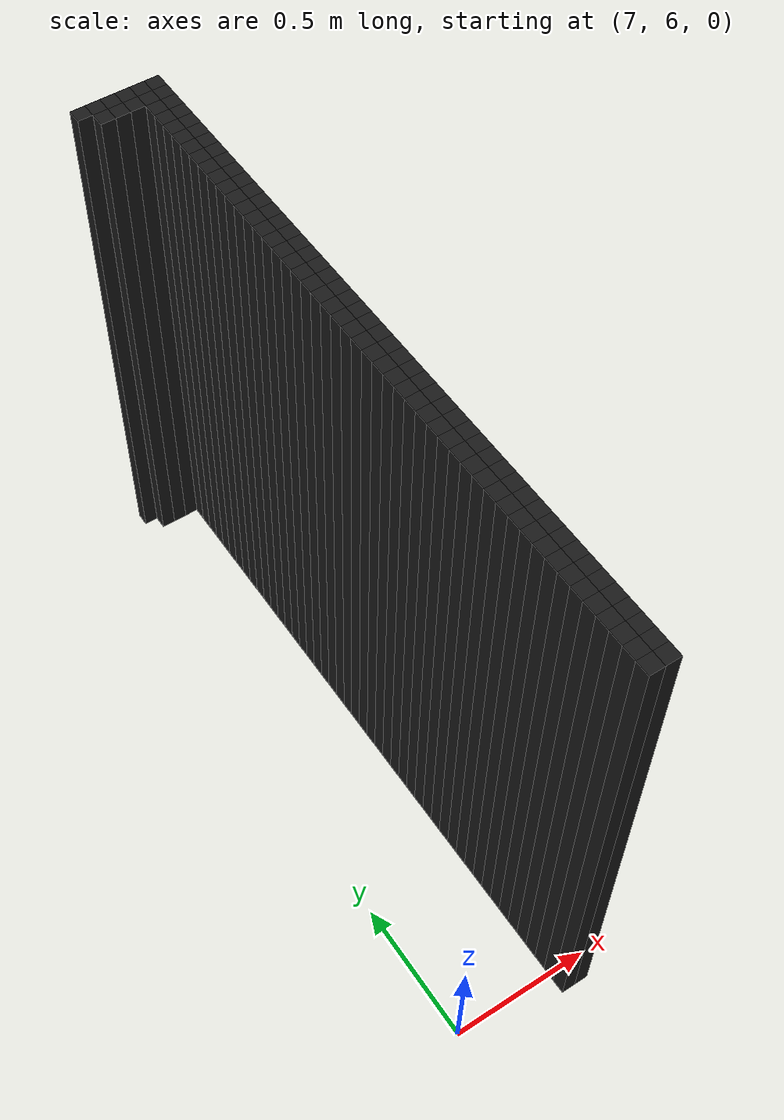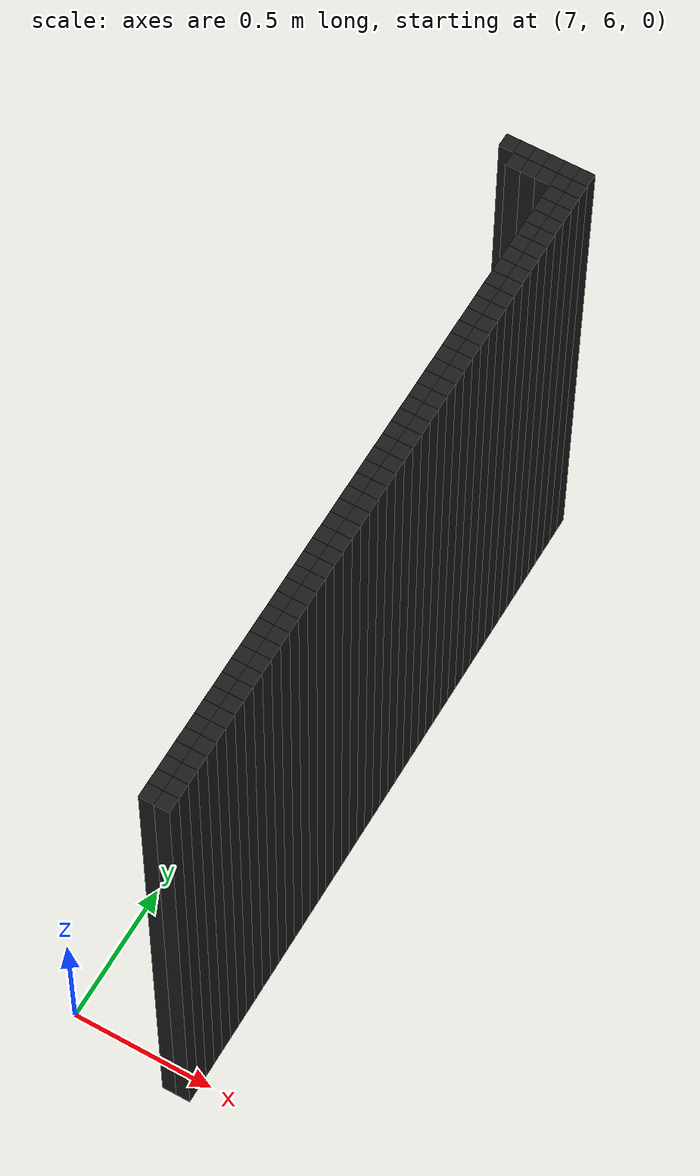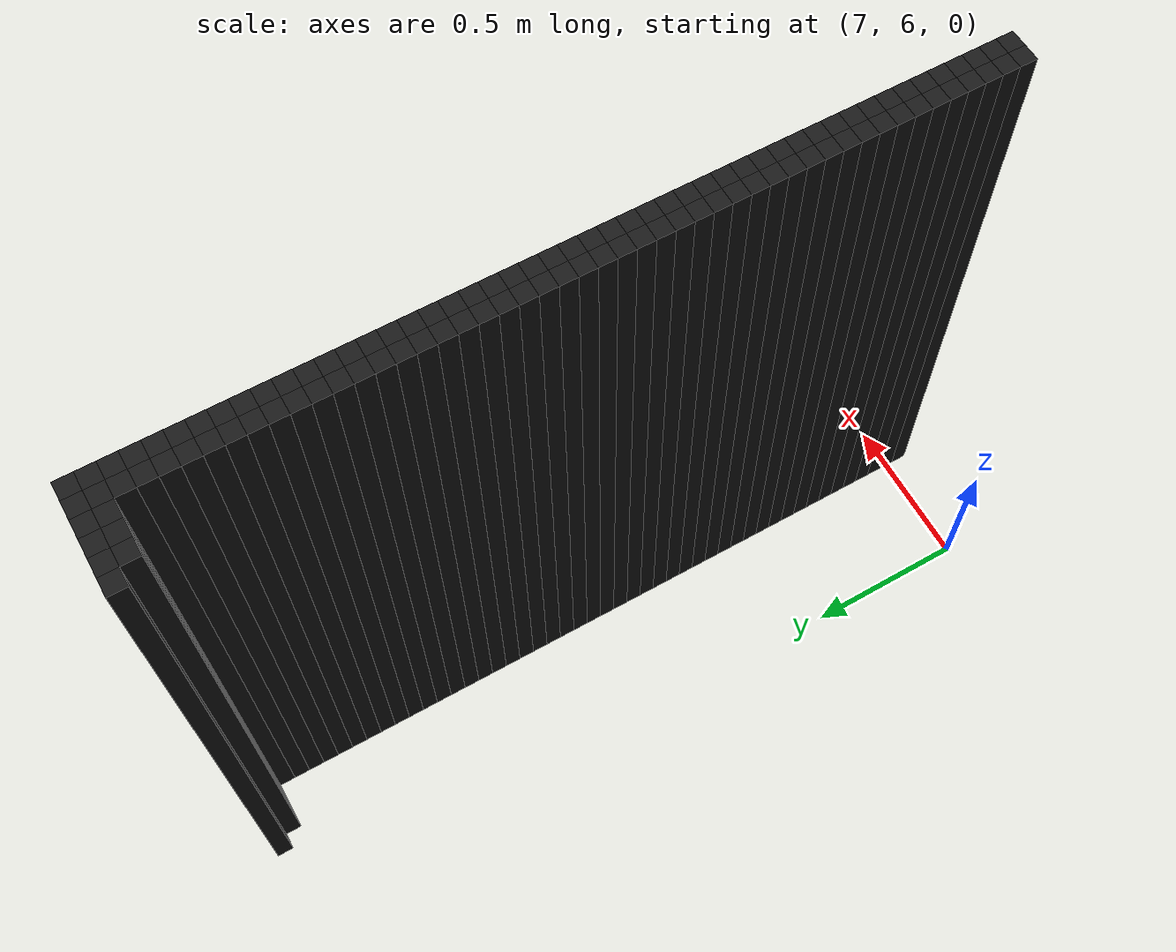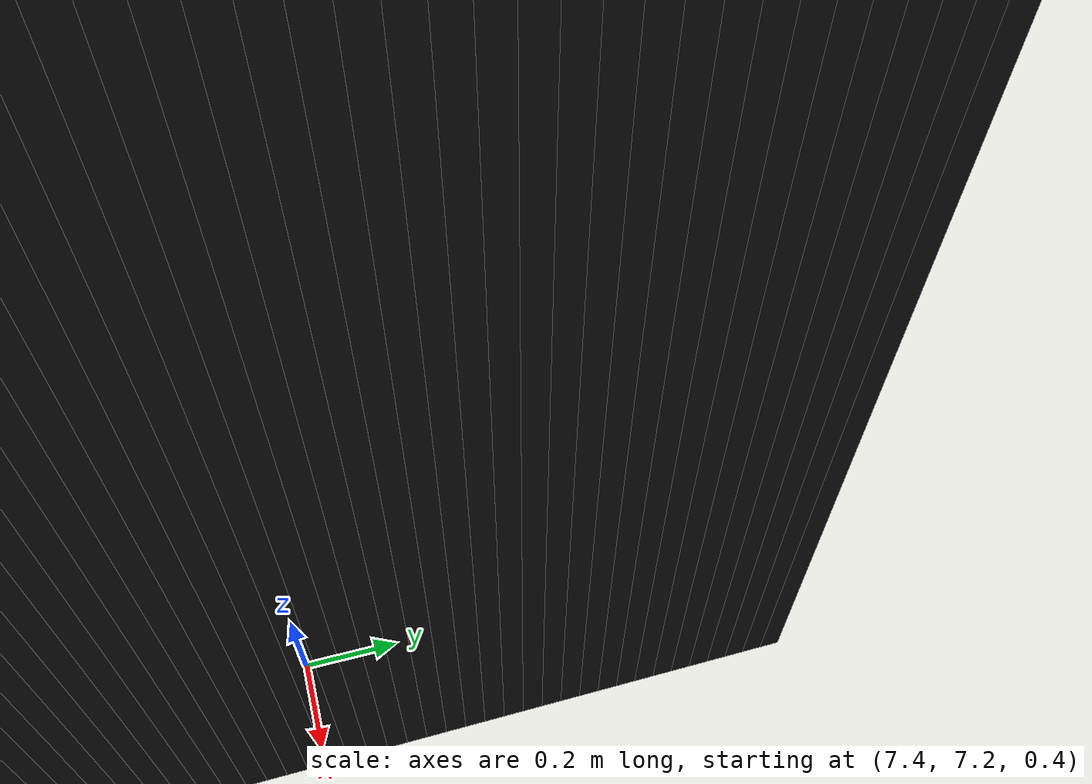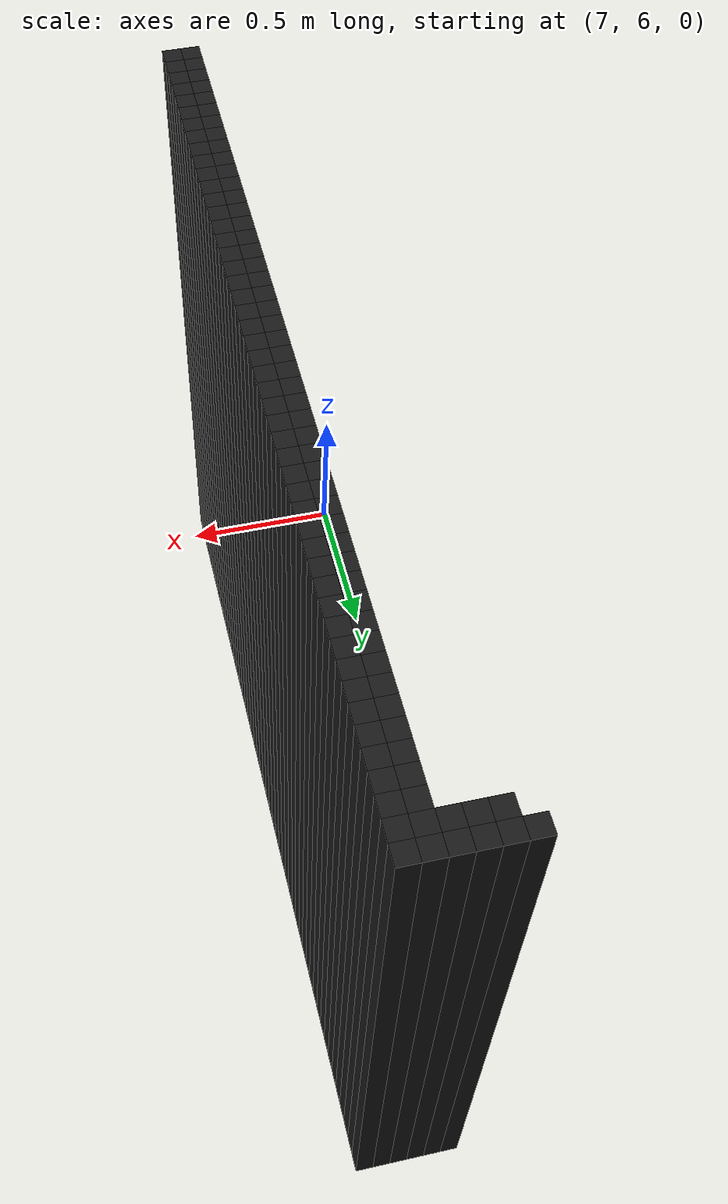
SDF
<sdf version="1.6">
 <model name="obstacle_234_0">
  <pose>7.190000000000001 8.350000000000001 1.0 0 0 0</pose>
  <static>true</static>
  <link name="box_link">
   <collision name="box_collision"><geometry><box><size>0.05 0.05 2.0</size></box></geometry></collision>
   <visual name="box_visual">
    <geometry><box><size>0.05 0.05 2.0</size></box></geometry>
    <material><ambient>0 0 0 1</ambient><diffuse>0.1 0.1 0.1 1</diffuse></material>
   </visual>
  </link>
 </model>
 <model name="obstacle_235_0">
  <pose>7.24 8.350000000000001 1.0 0 0 0</pose>
  <static>true</static>
  <link name="box_link">
   <collision name="box_collision"><geometry><box><size>0.05 0.05 2.0</size></box></geometry></collision>
   <visual name="box_visual">
    <geometry><box><size>0.05 0.05 2.0</size></box></geometry>
    <material><ambient>0 0 0 1</ambient><diffuse>0.1 0.1 0.1 1</diffuse></material>
   </visual>
  </link>
 </model>
 <model name="obstacle_236_0">
  <pose>7.290000000000001 8.350000000000001 1.0 0 0 0</pose>
  <static>true</static>
  <link name="box_link">
   <collision name="box_collision"><geometry><box><size>0.05 0.05 2.0</size></box></geometry></collision>
   <visual name="box_visual">
    <geometry><box><size>0.05 0.05 2.0</size></box></geometry>
    <material><ambient>0 0 0 1</ambient><diffuse>0.1 0.1 0.1 1</diffuse></material>
   </visual>
  </link>
 </model>
 <model name="obstacle_237_0">
  <pose>7.340000000000002 8.350000000000001 1.0 0 0 0</pose>
  <static>true</static>
  <link name="box_link">
   <collision name="box_collision"><geometry><box><size>0.05 0.05 2.0</size></box></geometry></collision>
   <visual name="box_visual">
    <geometry><box><size>0.05 0.05 2.0</size></box></geometry>
    <material><ambient>0 0 0 1</ambient><diffuse>0.1 0.1 0.1 1</diffuse></material>
   </visual>
  </link>
 </model>
 <model name="obstacle_238_0">
  <pose>7.390000000000001 8.350000000000001 1.0 0 0 0</pose>
  <static>true</static>
  <link name="box_link">
   <collision name="box_collision"><geometry><box><size>0.05 0.05 2.0</size></box></geometry></collision>
   <visual name="box_visual">
    <geometry><box><size>0.05 0.05 2.0</size></box></geometry>
    <material><ambient>0 0 0 1</ambient><diffuse>0.1 0.1 0.1 1</diffuse></material>
   </visual>
  </link>
 </model>
 <model name="obstacle_239_0">
  <pose>7.440000000000001 8.350000000000001 1.0 0 0 0</pose>
  <static>true</static>
  <link name="box_link">
   <collision name="box_collision"><geometry><box><size>0.05 0.05 2.0</size></box></geometry></collision>
   <visual name="box_visual">
    <geometry><box><size>0.05 0.05 2.0</size></box></geometry>
    <material><ambient>0 0 0 1</ambient><diffuse>0.1 0.1 0.1 1</diffuse></material>
   </visual>
  </link>
 </model>
 <model name="obstacle_235_1">
  <pose>7.24 8.3 1.0 0 0 0</pose>
  <static>true</static>
  <link name="box_link">
   <collision name="box_collision"><geometry><box><size>0.05 0.05 2.0</size></box></geometry></collision>
   <visual name="box_visual">
    <geometry><box><size>0.05 0.05 2.0</size></box></geometry>
    <material><ambient>0 0 0 1</ambient><diffuse>0.1 0.1 0.1 1</diffuse></material>
   </visual>
  </link>
 </model>
 <model name="obstacle_236_1">
  <pose>7.290000000000001 8.3 1.0 0 0 0</pose>
  <static>true</static>
  <link name="box_link">
   <collision name="box_collision"><geometry><box><size>0.05 0.05 2.0</size></box></geometry></collision>
   <visual name="box_visual">
    <geometry><box><size>0.05 0.05 2.0</size></box></geometry>
    <material><ambient>0 0 0 1</ambient><diffuse>0.1 0.1 0.1 1</diffuse></material>
   </visual>
  </link>
 </model>
 <model name="obstacle_237_1">
  <pose>7.340000000000002 8.3 1.0 0 0 0</pose>
  <static>true</static>
  <link name="box_link">
   <collision name="box_collision"><geometry><box><size>0.05 0.05 2.0</size></box></geometry></collision>
   <visual name="box_visual">
    <geometry><box><size>0.05 0.05 2.0</size></box></geometry>
    <material><ambient>0 0 0 1</ambient><diffuse>0.1 0.1 0.1 1</diffuse></material>
   </visual>
  </link>
 </model>
 <model name="obstacle_238_1">
  <pose>7.390000000000001 8.3 1.0 0 0 0</pose>
  <static>true</static>
  <link name="box_link">
   <collision name="box_collision"><geometry><box><size>0.05 0.05 2.0</size></box></geometry></collision>
   <visual name="box_visual">
    <geometry><box><size>0.05 0.05 2.0</size></box></geometry>
    <material><ambient>0 0 0 1</ambient><diffuse>0.1 0.1 0.1 1</diffuse></material>
   </visual>
  </link>
 </model>
 <model name="obstacle_239_1">
  <pose>7.440000000000001 8.3 1.0 0 0 0</pose>
  <static>true</static>
  <link name="box_link">
   <collision name="box_collision"><geometry><box><size>0.05 0.05 2.0</size></box></geometry></collision>
   <visual name="box_visual">
    <geometry><box><size>0.05 0.05 2.0</size></box></geometry>
    <material><ambient>0 0 0 1</ambient><diffuse>0.1 0.1 0.1 1</diffuse></material>
   </visual>
  </link>
 </model>
 <model name="obstacle_238_2">
  <pose>7.390000000000001 8.25 1.0 0 0 0</pose>
  <static>true</static>
  <link name="box_link">
   <collision name="box_collision"><geometry><box><size>0.05 0.05 2.0</size></box></geometry></collision>
   <visual name="box_visual">
    <geometry><box><size>0.05 0.05 2.0</size></box></geometry>
    <material><ambient>0 0 0 1</ambient><diffuse>0.1 0.1 0.1 1</diffuse></material>
   </visual>
  </link>
 </model>
 <model name="obstacle_239_2">
  <pose>7.440000000000001 8.25 1.0 0 0 0</pose>
  <static>true</static>
  <link name="box_link">
   <collision name="box_collision"><geometry><box><size>0.05 0.05 2.0</size></box></geometry></collision>
   <visual name="box_visual">
    <geometry><box><size>0.05 0.05 2.0</size></box></geometry>
    <material><ambient>0 0 0 1</ambient><diffuse>0.1 0.1 0.1 1</diffuse></material>
   </visual>
  </link>
 </model>
 <model name="obstacle_238_3">
  <pose>7.390000000000001 8.2 1.0 0 0 0</pose>
  <static>true</static>
  <link name="box_link">
   <collision name="box_collision"><geometry><box><size>0.05 0.05 2.0</size></box></geometry></collision>
   <visual name="box_visual">
    <geometry><box><size>0.05 0.05 2.0</size></box></geometry>
    <material><ambient>0 0 0 1</ambient><diffuse>0.1 0.1 0.1 1</diffuse></material>
   </visual>
  </link>
 </model>
 <model name="obstacle_239_3">
  <pose>7.440000000000001 8.2 1.0 0 0 0</pose>
  <static>true</static>
  <link name="box_link">
   <collision name="box_collision"><geometry><box><size>0.05 0.05 2.0</size></box></geometry></collision>
   <visual name="box_visual">
    <geometry><box><size>0.05 0.05 2.0</size></box></geometry>
    <material><ambient>0 0 0 1</ambient><diffuse>0.1 0.1 0.1 1</diffuse></material>
   </visual>
  </link>
 </model>
 <model name="obstacle_238_4">
  <pose>7.390000000000001 8.150000000000002 1.0 0 0 0</pose>
  <static>true</static>
  <link name="box_link">
   <collision name="box_collision"><geometry><box><size>0.05 0.05 2.0</size></box></geometry></collision>
   <visual name="box_visual">
    <geometry><box><size>0.05 0.05 2.0</size></box></geometry>
    <material><ambient>0 0 0 1</ambient><diffuse>0.1 0.1 0.1 1</diffuse></material>
   </visual>
  </link>
 </model>
 <model name="obstacle_239_4">
  <pose>7.440000000000001 8.150000000000002 1.0 0 0 0</pose>
  <static>true</static>
  <link name="box_link">
   <collision name="box_collision"><geometry><box><size>0.05 0.05 2.0</size></box></geometry></collision>
   <visual name="box_visual">
    <geometry><box><size>0.05 0.05 2.0</size></box></geometry>
    <material><ambient>0 0 0 1</ambient><diffuse>0.1 0.1 0.1 1</diffuse></material>
   </visual>
  </link>
 </model>
 <model name="obstacle_238_5">
  <pose>7.390000000000001 8.100000000000001 1.0 0 0 0</pose>
  <static>true</static>
  <link name="box_link">
   <collision name="box_collision"><geometry><box><size>0.05 0.05 2.0</size></box></geometry></collision>
   <visual name="box_visual">
    <geometry><box><size>0.05 0.05 2.0</size></box></geometry>
    <material><ambient>0 0 0 1</ambient><diffuse>0.1 0.1 0.1 1</diffuse></material>
   </visual>
  </link>
 </model>
 <model name="obstacle_239_5">
  <pose>7.440000000000001 8.100000000000001 1.0 0 0 0</pose>
  <static>true</static>
  <link name="box_link">
   <collision name="box_collision"><geometry><box><size>0.05 0.05 2.0</size></box></geometry></collision>
   <visual name="box_visual">
    <geometry><box><size>0.05 0.05 2.0</size></box></geometry>
    <material><ambient>0 0 0 1</ambient><diffuse>0.1 0.1 0.1 1</diffuse></material>
   </visual>
  </link>
 </model>
 <model name="obstacle_238_6">
  <pose>7.390000000000001 8.05 1.0 0 0 0</pose>
  <static>true</static>
  <link name="box_link">
   <collision name="box_collision"><geometry><box><size>0.05 0.05 2.0</size></box></geometry></collision>
   <visual name="box_visual">
    <geometry><box><size>0.05 0.05 2.0</size></box></geometry>
    <material><ambient>0 0 0 1</ambient><diffuse>0.1 0.1 0.1 1</diffuse></material>
   </visual>
  </link>
 </model>
 <model name="obstacle_239_6">
  <pose>7.440000000000001 8.05 1.0 0 0 0</pose>
  <static>true</static>
  <link name="box_link">
   <collision name="box_collision"><geometry><box><size>0.05 0.05 2.0</size></box></geometry></collision>
   <visual name="box_visual">
    <geometry><box><size>0.05 0.05 2.0</size></box></geometry>
    <material><ambient>0 0 0 1</ambient><diffuse>0.1 0.1 0.1 1</diffuse></material>
   </visual>
  </link>
 </model>
 <model name="obstacle_238_7">
  <pose>7.390000000000001 8.0 1.0 0 0 0</pose>
  <static>true</static>
  <link name="box_link">
   <collision name="box_collision"><geometry><box><size>0.05 0.05 2.0</size></box></geometry></collision>
   <visual name="box_visual">
    <geometry><box><size>0.05 0.05 2.0</size></box></geometry>
    <material><ambient>0 0 0 1</ambient><diffuse>0.1 0.1 0.1 1</diffuse></material>
   </visual>
  </link>
 </model>
 <model name="obstacle_239_7">
  <pose>7.440000000000001 8.0 1.0 0 0 0</pose>
  <static>true</static>
  <link name="box_link">
   <collision name="box_collision"><geometry><box><size>0.05 0.05 2.0</size></box></geometry></collision>
   <visual name="box_visual">
    <geometry><box><size>0.05 0.05 2.0</size></box></geometry>
    <material><ambient>0 0 0 1</ambient><diffuse>0.1 0.1 0.1 1</diffuse></material>
   </visual>
  </link>
 </model>
 <model name="obstacle_238_8">
  <pose>7.390000000000001 7.95 1.0 0 0 0</pose>
  <static>true</static>
  <link name="box_link">
   <collision name="box_collision"><geometry><box><size>0.05 0.05 2.0</size></box></geometry></collision>
   <visual name="box_visual">
    <geometry><box><size>0.05 0.05 2.0</size></box></geometry>
    <material><ambient>0 0 0 1</ambient><diffuse>0.1 0.1 0.1 1</diffuse></material>
   </visual>
  </link>
 </model>
 <model name="obstacle_239_8">
  <pose>7.440000000000001 7.95 1.0 0 0 0</pose>
  <static>true</static>
  <link name="box_link">
   <collision name="box_collision"><geometry><box><size>0.05 0.05 2.0</size></box></geometry></collision>
   <visual name="box_visual">
    <geometry><box><size>0.05 0.05 2.0</size></box></geometry>
    <material><ambient>0 0 0 1</ambient><diffuse>0.1 0.1 0.1 1</diffuse></material>
   </visual>
  </link>
 </model>
 <model name="obstacle_238_9">
  <pose>7.390000000000001 7.900000000000001 1.0 0 0 0</pose>
  <static>true</static>
  <link name="box_link">
   <collision name="box_collision"><geometry><box><size>0.05 0.05 2.0</size></box></geometry></collision>
   <visual name="box_visual">
    <geometry><box><size>0.05 0.05 2.0</size></box></geometry>
    <material><ambient>0 0 0 1</ambient><diffuse>0.1 0.1 0.1 1</diffuse></material>
   </visual>
  </link>
 </model>
 <model name="obstacle_239_9">
  <pose>7.440000000000001 7.900000000000001 1.0 0 0 0</pose>
  <static>true</static>
  <link name="box_link">
   <collision name="box_collision"><geometry><box><size>0.05 0.05 2.0</size></box></geometry></collision>
   <visual name="box_visual">
    <geometry><box><size>0.05 0.05 2.0</size></box></geometry>
    <material><ambient>0 0 0 1</ambient><diffuse>0.1 0.1 0.1 1</diffuse></material>
   </visual>
  </link>
 </model>
 <model name="obstacle_238_10">
  <pose>7.390000000000001 7.8500000000000005 1.0 0 0 0</pose>
  <static>true</static>
  <link name="box_link">
   <collision name="box_collision"><geometry><box><size>0.05 0.05 2.0</size></box></geometry></collision>
   <visual name="box_visual">
    <geometry><box><size>0.05 0.05 2.0</size></box></geometry>
    <material><ambient>0 0 0 1</ambient><diffuse>0.1 0.1 0.1 1</diffuse></material>
   </visual>
  </link>
 </model>
 <model name="obstacle_239_10">
  <pose>7.440000000000001 7.8500000000000005 1.0 0 0 0</pose>
  <static>true</static>
  <link name="box_link">
   <collision name="box_collision"><geometry><box><size>0.05 0.05 2.0</size></box></geometry></collision>
   <visual name="box_visual">
    <geometry><box><size>0.05 0.05 2.0</size></box></geometry>
    <material><ambient>0 0 0 1</ambient><diffuse>0.1 0.1 0.1 1</diffuse></material>
   </visual>
  </link>
 </model>
 <model name="obstacle_238_11">
  <pose>7.390000000000001 7.8 1.0 0 0 0</pose>
  <static>true</static>
  <link name="box_link">
   <collision name="box_collision"><geometry><box><size>0.05 0.05 2.0</size></box></geometry></collision>
   <visual name="box_visual">
    <geometry><box><size>0.05 0.05 2.0</size></box></geometry>
    <material><ambient>0 0 0 1</ambient><diffuse>0.1 0.1 0.1 1</diffuse></material>
   </visual>
  </link>
 </model>
 <model name="obstacle_239_11">
  <pose>7.440000000000001 7.8 1.0 0 0 0</pose>
  <static>true</static>
  <link name="box_link">
   <collision name="box_collision"><geometry><box><size>0.05 0.05 2.0</size></box></geometry></collision>
   <visual name="box_visual">
    <geometry><box><size>0.05 0.05 2.0</size></box></geometry>
    <material><ambient>0 0 0 1</ambient><diffuse>0.1 0.1 0.1 1</diffuse></material>
   </visual>
  </link>
 </model>
 <model name="obstacle_238_12">
  <pose>7.390000000000001 7.750000000000001 1.0 0 0 0</pose>
  <static>true</static>
  <link name="box_link">
   <collision name="box_collision"><geometry><box><size>0.05 0.05 2.0</size></box></geometry></collision>
   <visual name="box_visual">
    <geometry><box><size>0.05 0.05 2.0</size></box></geometry>
    <material><ambient>0 0 0 1</ambient><diffuse>0.1 0.1 0.1 1</diffuse></material>
   </visual>
  </link>
 </model>
 <model name="obstacle_239_12">
  <pose>7.440000000000001 7.750000000000001 1.0 0 0 0</pose>
  <static>true</static>
  <link name="box_link">
   <collision name="box_collision"><geometry><box><size>0.05 0.05 2.0</size></box></geometry></collision>
   <visual name="box_visual">
    <geometry><box><size>0.05 0.05 2.0</size></box></geometry>
    <material><ambient>0 0 0 1</ambient><diffuse>0.1 0.1 0.1 1</diffuse></material>
   </visual>
  </link>
 </model>
 <model name="obstacle_238_13">
  <pose>7.390000000000001 7.7 1.0 0 0 0</pose>
  <static>true</static>
  <link name="box_link">
   <collision name="box_collision"><geometry><box><size>0.05 0.05 2.0</size></box></geometry></collision>
   <visual name="box_visual">
    <geometry><box><size>0.05 0.05 2.0</size></box></geometry>
    <material><ambient>0 0 0 1</ambient><diffuse>0.1 0.1 0.1 1</diffuse></material>
   </visual>
  </link>
 </model>
 <model name="obstacle_239_13">
  <pose>7.440000000000001 7.7 1.0 0 0 0</pose>
  <static>true</static>
  <link name="box_link">
   <collision name="box_collision"><geometry><box><size>0.05 0.05 2.0</size></box></geometry></collision>
   <visual name="box_visual">
    <geometry><box><size>0.05 0.05 2.0</size></box></geometry>
    <material><ambient>0 0 0 1</ambient><diffuse>0.1 0.1 0.1 1</diffuse></material>
   </visual>
  </link>
 </model>
 <model name="obstacle_238_14">
  <pose>7.390000000000001 7.650000000000001 1.0 0 0 0</pose>
  <static>true</static>
  <link name="box_link">
   <collision name="box_collision"><geometry><box><size>0.05 0.05 2.0</size></box></geometry></collision>
   <visual name="box_visual">
    <geometry><box><size>0.05 0.05 2.0</size></box></geometry>
    <material><ambient>0 0 0 1</ambient><diffuse>0.1 0.1 0.1 1</diffuse></material>
   </visual>
  </link>
 </model>
 <model name="obstacle_239_14">
  <pose>7.440000000000001 7.650000000000001 1.0 0 0 0</pose>
  <static>true</static>
  <link name="box_link">
   <collision name="box_collision"><geometry><box><size>0.05 0.05 2.0</size></box></geometry></collision>
   <visual name="box_visual">
    <geometry><box><size>0.05 0.05 2.0</size></box></geometry>
    <material><ambient>0 0 0 1</ambient><diffuse>0.1 0.1 0.1 1</diffuse></material>
   </visual>
  </link>
 </model>
 <model name="obstacle_238_15">
  <pose>7.390000000000001 7.6000000000000005 1.0 0 0 0</pose>
  <static>true</static>
  <link name="box_link">
   <collision name="box_collision"><geometry><box><size>0.05 0.05 2.0</size></box></geometry></collision>
   <visual name="box_visual">
    <geometry><box><size>0.05 0.05 2.0</size></box></geometry>
    <material><ambient>0 0 0 1</ambient><diffuse>0.1 0.1 0.1 1</diffuse></material>
   </visual>
  </link>
 </model>
 <model name="obstacle_239_15">
  <pose>7.440000000000001 7.6000000000000005 1.0 0 0 0</pose>
  <static>true</static>
  <link name="box_link">
   <collision name="box_collision"><geometry><box><size>0.05 0.05 2.0</size></box></geometry></collision>
   <visual name="box_visual">
    <geometry><box><size>0.05 0.05 2.0</size></box></geometry>
    <material><ambient>0 0 0 1</ambient><diffuse>0.1 0.1 0.1 1</diffuse></material>
   </visual>
  </link>
 </model>
 <model name="obstacle_238_16">
  <pose>7.390000000000001 7.55 1.0 0 0 0</pose>
  <static>true</static>
  <link name="box_link">
   <collision name="box_collision"><geometry><box><size>0.05 0.05 2.0</size></box></geometry></collision>
   <visual name="box_visual">
    <geometry><box><size>0.05 0.05 2.0</size></box></geometry>
    <material><ambient>0 0 0 1</ambient><diffuse>0.1 0.1 0.1 1</diffuse></material>
   </visual>
  </link>
 </model>
 <model name="obstacle_239_16">
  <pose>7.440000000000001 7.55 1.0 0 0 0</pose>
  <static>true</static>
  <link name="box_link">
   <collision name="box_collision"><geometry><box><size>0.05 0.05 2.0</size></box></geometry></collision>
   <visual name="box_visual">
    <geometry><box><size>0.05 0.05 2.0</size></box></geometry>
    <material><ambient>0 0 0 1</ambient><diffuse>0.1 0.1 0.1 1</diffuse></material>
   </visual>
  </link>
 </model>
 <model name="obstacle_238_17">
  <pose>7.390000000000001 7.500000000000001 1.0 0 0 0</pose>
  <static>true</static>
  <link name="box_link">
   <collision name="box_collision"><geometry><box><size>0.05 0.05 2.0</size></box></geometry></collision>
   <visual name="box_visual">
    <geometry><box><size>0.05 0.05 2.0</size></box></geometry>
    <material><ambient>0 0 0 1</ambient><diffuse>0.1 0.1 0.1 1</diffuse></material>
   </visual>
  </link>
 </model>
 <model name="obstacle_239_17">
  <pose>7.440000000000001 7.500000000000001 1.0 0 0 0</pose>
  <static>true</static>
  <link name="box_link">
   <collision name="box_collision"><geometry><box><size>0.05 0.05 2.0</size></box></geometry></collision>
   <visual name="box_visual">
    <geometry><box><size>0.05 0.05 2.0</size></box></geometry>
    <material><ambient>0 0 0 1</ambient><diffuse>0.1 0.1 0.1 1</diffuse></material>
   </visual>
  </link>
 </model>
 <model name="obstacle_238_18">
  <pose>7.390000000000001 7.45 1.0 0 0 0</pose>
  <static>true</static>
  <link name="box_link">
   <collision name="box_collision"><geometry><box><size>0.05 0.05 2.0</size></box></geometry></collision>
   <visual name="box_visual">
    <geometry><box><size>0.05 0.05 2.0</size></box></geometry>
    <material><ambient>0 0 0 1</ambient><diffuse>0.1 0.1 0.1 1</diffuse></material>
   </visual>
  </link>
 </model>
 <model name="obstacle_239_18">
  <pose>7.440000000000001 7.45 1.0 0 0 0</pose>
  <static>true</static>
  <link name="box_link">
   <collision name="box_collision"><geometry><box><size>0.05 0.05 2.0</size></box></geometry></collision>
   <visual name="box_visual">
    <geometry><box><size>0.05 0.05 2.0</size></box></geometry>
    <material><ambient>0 0 0 1</ambient><diffuse>0.1 0.1 0.1 1</diffuse></material>
   </visual>
  </link>
 </model>
 <model name="obstacle_238_19">
  <pose>7.390000000000001 7.400000000000001 1.0 0 0 0</pose>
  <static>true</static>
  <link name="box_link">
   <collision name="box_collision"><geometry><box><size>0.05 0.05 2.0</size></box></geometry></collision>
   <visual name="box_visual">
    <geometry><box><size>0.05 0.05 2.0</size></box></geometry>
    <material><ambient>0 0 0 1</ambient><diffuse>0.1 0.1 0.1 1</diffuse></material>
   </visual>
  </link>
 </model>
 <model name="obstacle_239_19">
  <pose>7.440000000000001 7.400000000000001 1.0 0 0 0</pose>
  <static>true</static>
  <link name="box_link">
   <collision name="box_collision"><geometry><box><size>0.05 0.05 2.0</size></box></geometry></collision>
   <visual name="box_visual">
    <geometry><box><size>0.05 0.05 2.0</size></box></geometry>
    <material><ambient>0 0 0 1</ambient><diffuse>0.1 0.1 0.1 1</diffuse></material>
   </visual>
  </link>
 </model>
 <model name="obstacle_238_20">
  <pose>7.390000000000001 7.3500000000000005 1.0 0 0 0</pose>
  <static>true</static>
  <link name="box_link">
   <collision name="box_collision"><geometry><box><size>0.05 0.05 2.0</size></box></geometry></collision>
   <visual name="box_visual">
    <geometry><box><size>0.05 0.05 2.0</size></box></geometry>
    <material><ambient>0 0 0 1</ambient><diffuse>0.1 0.1 0.1 1</diffuse></material>
   </visual>
  </link>
 </model>
 <model name="obstacle_239_20">
  <pose>7.440000000000001 7.3500000000000005 1.0 0 0 0</pose>
  <static>true</static>
  <link name="box_link">
   <collision name="box_collision"><geometry><box><size>0.05 0.05 2.0</size></box></geometry></collision>
   <visual name="box_visual">
    <geometry><box><size>0.05 0.05 2.0</size></box></geometry>
    <material><ambient>0 0 0 1</ambient><diffuse>0.1 0.1 0.1 1</diffuse></material>
   </visual>
  </link>
 </model>
 <model name="obstacle_238_21">
  <pose>7.390000000000001 7.3 1.0 0 0 0</pose>
  <static>true</static>
  <link name="box_link">
   <collision name="box_collision"><geometry><box><size>0.05 0.05 2.0</size></box></geometry></collision>
   <visual name="box_visual">
    <geometry><box><size>0.05 0.05 2.0</size></box></geometry>
    <material><ambient>0 0 0 1</ambient><diffuse>0.1 0.1 0.1 1</diffuse></material>
   </visual>
  </link>
 </model>
 <model name="obstacle_239_21">
  <pose>7.440000000000001 7.3 1.0 0 0 0</pose>
  <static>true</static>
  <link name="box_link">
   <collision name="box_collision"><geometry><box><size>0.05 0.05 2.0</size></box></geometry></collision>
   <visual name="box_visual">
    <geometry><box><size>0.05 0.05 2.0</size></box></geometry>
    <material><ambient>0 0 0 1</ambient><diffuse>0.1 0.1 0.1 1</diffuse></material>
   </visual>
  </link>
 </model>
 <model name="obstacle_238_22">
  <pose>7.390000000000001 7.250000000000001 1.0 0 0 0</pose>
  <static>true</static>
  <link name="box_link">
   <collision name="box_collision"><geometry><box><size>0.05 0.05 2.0</size></box></geometry></collision>
   <visual name="box_visual">
    <geometry><box><size>0.05 0.05 2.0</size></box></geometry>
    <material><ambient>0 0 0 1</ambient><diffuse>0.1 0.1 0.1 1</diffuse></material>
   </visual>
  </link>
 </model>
 <model name="obstacle_239_22">
  <pose>7.440000000000001 7.250000000000001 1.0 0 0 0</pose>
  <static>true</static>
  <link name="box_link">
   <collision name="box_collision"><geometry><box><size>0.05 0.05 2.0</size></box></geometry></collision>
   <visual name="box_visual">
    <geometry><box><size>0.05 0.05 2.0</size></box></geometry>
    <material><ambient>0 0 0 1</ambient><diffuse>0.1 0.1 0.1 1</diffuse></material>
   </visual>
  </link>
 </model>
 <model name="obstacle_238_23">
  <pose>7.390000000000001 7.2 1.0 0 0 0</pose>
  <static>true</static>
  <link name="box_link">
   <collision name="box_collision"><geometry><box><size>0.05 0.05 2.0</size></box></geometry></collision>
   <visual name="box_visual">
    <geometry><box><size>0.05 0.05 2.0</size></box></geometry>
    <material><ambient>0 0 0 1</ambient><diffuse>0.1 0.1 0.1 1</diffuse></material>
   </visual>
  </link>
 </model>
 <model name="obstacle_239_23">
  <pose>7.440000000000001 7.2 1.0 0 0 0</pose>
  <static>true</static>
  <link name="box_link">
   <collision name="box_collision"><geometry><box><size>0.05 0.05 2.0</size></box></geometry></collision>
   <visual name="box_visual">
    <geometry><box><size>0.05 0.05 2.0</size></box></geometry>
    <material><ambient>0 0 0 1</ambient><diffuse>0.1 0.1 0.1 1</diffuse></material>
   </visual>
  </link>
 </model>
 <model name="obstacle_238_24">
  <pose>7.390000000000001 7.1499999999999995 1.0 0 0 0</pose>
  <static>true</static>
  <link name="box_link">
   <collision name="box_collision"><geometry><box><size>0.05 0.05 2.0</size></box></geometry></collision>
   <visual name="box_visual">
    <geometry><box><size>0.05 0.05 2.0</size></box></geometry>
    <material><ambient>0 0 0 1</ambient><diffuse>0.1 0.1 0.1 1</diffuse></material>
   </visual>
  </link>
 </model>
 <model name="obstacle_239_24">
  <pose>7.440000000000001 7.1499999999999995 1.0 0 0 0</pose>
  <static>true</static>
  <link name="box_link">
   <collision name="box_collision"><geometry><box><size>0.05 0.05 2.0</size></box></geometry></collision>
   <visual name="box_visual">
    <geometry><box><size>0.05 0.05 2.0</size></box></geometry>
    <material><ambient>0 0 0 1</ambient><diffuse>0.1 0.1 0.1 1</diffuse></material>
   </visual>
  </link>
 </model>
 <model name="obstacle_238_25">
  <pose>7.390000000000001 7.1000000000000005 1.0 0 0 0</pose>
  <static>true</static>
  <link name="box_link">
   <collision name="box_collision"><geometry><box><size>0.05 0.05 2.0</size></box></geometry></collision>
   <visual name="box_visual">
    <geometry><box><size>0.05 0.05 2.0</size></box></geometry>
    <material><ambient>0 0 0 1</ambient><diffuse>0.1 0.1 0.1 1</diffuse></material>
   </visual>
  </link>
 </model>
 <model name="obstacle_239_25">
  <pose>7.440000000000001 7.1000000000000005 1.0 0 0 0</pose>
  <static>true</static>
  <link name="box_link">
   <collision name="box_collision"><geometry><box><size>0.05 0.05 2.0</size></box></geometry></collision>
   <visual name="box_visual">
    <geometry><box><size>0.05 0.05 2.0</size></box></geometry>
    <material><ambient>0 0 0 1</ambient><diffuse>0.1 0.1 0.1 1</diffuse></material>
   </visual>
  </link>
 </model>
 <model name="obstacle_238_26">
  <pose>7.390000000000001 7.05 1.0 0 0 0</pose>
  <static>true</static>
  <link name="box_link">
   <collision name="box_collision"><geometry><box><size>0.05 0.05 2.0</size></box></geometry></collision>
   <visual name="box_visual">
    <geometry><box><size>0.05 0.05 2.0</size></box></geometry>
    <material><ambient>0 0 0 1</ambient><diffuse>0.1 0.1 0.1 1</diffuse></material>
   </visual>
  </link>
 </model>
 <model name="obstacle_239_26">
  <pose>7.440000000000001 7.05 1.0 0 0 0</pose>
  <static>true</static>
  <link name="box_link">
   <collision name="box_collision"><geometry><box><size>0.05 0.05 2.0</size></box></geometry></collision>
   <visual name="box_visual">
    <geometry><box><size>0.05 0.05 2.0</size></box></geometry>
    <material><ambient>0 0 0 1</ambient><diffuse>0.1 0.1 0.1 1</diffuse></material>
   </visual>
  </link>
 </model>
 <model name="obstacle_238_27">
  <pose>7.390000000000001 7.000000000000001 1.0 0 0 0</pose>
  <static>true</static>
  <link name="box_link">
   <collision name="box_collision"><geometry><box><size>0.05 0.05 2.0</size></box></geometry></collision>
   <visual name="box_visual">
    <geometry><box><size>0.05 0.05 2.0</size></box></geometry>
    <material><ambient>0 0 0 1</ambient><diffuse>0.1 0.1 0.1 1</diffuse></material>
   </visual>
  </link>
 </model>
 <model name="obstacle_239_27">
  <pose>7.440000000000001 7.000000000000001 1.0 0 0 0</pose>
  <static>true</static>
  <link name="box_link">
   <collision name="box_collision"><geometry><box><size>0.05 0.05 2.0</size></box></geometry></collision>
   <visual name="box_visual">
    <geometry><box><size>0.05 0.05 2.0</size></box></geometry>
    <material><ambient>0 0 0 1</ambient><diffuse>0.1 0.1 0.1 1</diffuse></material>
   </visual>
  </link>
 </model>
 <model name="obstacle_238_28">
  <pose>7.390000000000001 6.95 1.0 0 0 0</pose>
  <static>true</static>
  <link name="box_link">
   <collision name="box_collision"><geometry><box><size>0.05 0.05 2.0</size></box></geometry></collision>
   <visual name="box_visual">
    <geometry><box><size>0.05 0.05 2.0</size></box></geometry>
    <material><ambient>0 0 0 1</ambient><diffuse>0.1 0.1 0.1 1</diffuse></material>
   </visual>
  </link>
 </model>
 <model name="obstacle_239_28">
  <pose>7.440000000000001 6.95 1.0 0 0 0</pose>
  <static>true</static>
  <link name="box_link">
   <collision name="box_collision"><geometry><box><size>0.05 0.05 2.0</size></box></geometry></collision>
   <visual name="box_visual">
    <geometry><box><size>0.05 0.05 2.0</size></box></geometry>
    <material><ambient>0 0 0 1</ambient><diffuse>0.1 0.1 0.1 1</diffuse></material>
   </visual>
  </link>
 </model>
 <model name="obstacle_238_29">
  <pose>7.390000000000001 6.8999999999999995 1.0 0 0 0</pose>
  <static>true</static>
  <link name="box_link">
   <collision name="box_collision"><geometry><box><size>0.05 0.05 2.0</size></box></geometry></collision>
   <visual name="box_visual">
    <geometry><box><size>0.05 0.05 2.0</size></box></geometry>
    <material><ambient>0 0 0 1</ambient><diffuse>0.1 0.1 0.1 1</diffuse></material>
   </visual>
  </link>
 </model>
 <model name="obstacle_239_29">
  <pose>7.440000000000001 6.8999999999999995 1.0 0 0 0</pose>
  <static>true</static>
  <link name="box_link">
   <collision name="box_collision"><geometry><box><size>0.05 0.05 2.0</size></box></geometry></collision>
   <visual name="box_visual">
    <geometry><box><size>0.05 0.05 2.0</size></box></geometry>
    <material><ambient>0 0 0 1</ambient><diffuse>0.1 0.1 0.1 1</diffuse></material>
   </visual>
  </link>
 </model>
 <model name="obstacle_238_30">
  <pose>7.390000000000001 6.8500000000000005 1.0 0 0 0</pose>
  <static>true</static>
  <link name="box_link">
   <collision name="box_collision"><geometry><box><size>0.05 0.05 2.0</size></box></geometry></collision>
   <visual name="box_visual">
    <geometry><box><size>0.05 0.05 2.0</size></box></geometry>
    <material><ambient>0 0 0 1</ambient><diffuse>0.1 0.1 0.1 1</diffuse></material>
   </visual>
  </link>
 </model>
 <model name="obstacle_239_30">
  <pose>7.440000000000001 6.8500000000000005 1.0 0 0 0</pose>
  <static>true</static>
  <link name="box_link">
   <collision name="box_collision"><geometry><box><size>0.05 0.05 2.0</size></box></geometry></collision>
   <visual name="box_visual">
    <geometry><box><size>0.05 0.05 2.0</size></box></geometry>
    <material><ambient>0 0 0 1</ambient><diffuse>0.1 0.1 0.1 1</diffuse></material>
   </visual>
  </link>
 </model>
 <model name="obstacle_238_31">
  <pose>7.390000000000001 6.8 1.0 0 0 0</pose>
  <static>true</static>
  <link name="box_link">
   <collision name="box_collision"><geometry><box><size>0.05 0.05 2.0</size></box></geometry></collision>
   <visual name="box_visual">
    <geometry><box><size>0.05 0.05 2.0</size></box></geometry>
    <material><ambient>0 0 0 1</ambient><diffuse>0.1 0.1 0.1 1</diffuse></material>
   </visual>
  </link>
 </model>
 <model name="obstacle_239_31">
  <pose>7.440000000000001 6.8 1.0 0 0 0</pose>
  <static>true</static>
  <link name="box_link">
   <collision name="box_collision"><geometry><box><size>0.05 0.05 2.0</size></box></geometry></collision>
   <visual name="box_visual">
    <geometry><box><size>0.05 0.05 2.0</size></box></geometry>
    <material><ambient>0 0 0 1</ambient><diffuse>0.1 0.1 0.1 1</diffuse></material>
   </visual>
  </link>
 </model>
 <model name="obstacle_238_32">
  <pose>7.390000000000001 6.750000000000001 1.0 0 0 0</pose>
  <static>true</static>
  <link name="box_link">
   <collision name="box_collision"><geometry><box><size>0.05 0.05 2.0</size></box></geometry></collision>
   <visual name="box_visual">
    <geometry><box><size>0.05 0.05 2.0</size></box></geometry>
    <material><ambient>0 0 0 1</ambient><diffuse>0.1 0.1 0.1 1</diffuse></material>
   </visual>
  </link>
 </model>
 <model name="obstacle_239_32">
  <pose>7.440000000000001 6.750000000000001 1.0 0 0 0</pose>
  <static>true</static>
  <link name="box_link">
   <collision name="box_collision"><geometry><box><size>0.05 0.05 2.0</size></box></geometry></collision>
   <visual name="box_visual">
    <geometry><box><size>0.05 0.05 2.0</size></box></geometry>
    <material><ambient>0 0 0 1</ambient><diffuse>0.1 0.1 0.1 1</diffuse></material>
   </visual>
  </link>
 </model>
 <model name="obstacle_238_33">
  <pose>7.390000000000001 6.7 1.0 0 0 0</pose>
  <static>true</static>
  <link name="box_link">
   <collision name="box_collision"><geometry><box><size>0.05 0.05 2.0</size></box></geometry></collision>
   <visual name="box_visual">
    <geometry><box><size>0.05 0.05 2.0</size></box></geometry>
    <material><ambient>0 0 0 1</ambient><diffuse>0.1 0.1 0.1 1</diffuse></material>
   </visual>
  </link>
 </model>
 <model name="obstacle_239_33">
  <pose>7.440000000000001 6.7 1.0 0 0 0</pose>
  <static>true</static>
  <link name="box_link">
   <collision name="box_collision"><geometry><box><size>0.05 0.05 2.0</size></box></geometry></collision>
   <visual name="box_visual">
    <geometry><box><size>0.05 0.05 2.0</size></box></geometry>
    <material><ambient>0 0 0 1</ambient><diffuse>0.1 0.1 0.1 1</diffuse></material>
   </visual>
  </link>
 </model>
 <model name="obstacle_238_34">
  <pose>7.390000000000001 6.6499999999999995 1.0 0 0 0</pose>
  <static>true</static>
  <link name="box_link">
   <collision name="box_collision"><geometry><box><size>0.05 0.05 2.0</size></box></geometry></collision>
   <visual name="box_visual">
    <geometry><box><size>0.05 0.05 2.0</size></box></geometry>
    <material><ambient>0 0 0 1</ambient><diffuse>0.1 0.1 0.1 1</diffuse></material>
   </visual>
  </link>
 </model>
 <model name="obstacle_239_34">
  <pose>7.440000000000001 6.6499999999999995 1.0 0 0 0</pose>
  <static>true</static>
  <link name="box_link">
   <collision name="box_collision"><geometry><box><size>0.05 0.05 2.0</size></box></geometry></collision>
   <visual name="box_visual">
    <geometry><box><size>0.05 0.05 2.0</size></box></geometry>
    <material><ambient>0 0 0 1</ambient><diffuse>0.1 0.1 0.1 1</diffuse></material>
   </visual>
  </link>
 </model>
 <model name="obstacle_238_35">
  <pose>7.390000000000001 6.6000000000000005 1.0 0 0 0</pose>
  <static>true</static>
  <link name="box_link">
   <collision name="box_collision"><geometry><box><size>0.05 0.05 2.0</size></box></geometry></collision>
   <visual name="box_visual">
    <geometry><box><size>0.05 0.05 2.0</size></box></geometry>
    <material><ambient>0 0 0 1</ambient><diffuse>0.1 0.1 0.1 1</diffuse></material>
   </visual>
  </link>
 </model>
 <model name="obstacle_239_35">
  <pose>7.440000000000001 6.6000000000000005 1.0 0 0 0</pose>
  <static>true</static>
  <link name="box_link">
   <collision name="box_collision"><geometry><box><size>0.05 0.05 2.0</size></box></geometry></collision>
   <visual name="box_visual">
    <geometry><box><size>0.05 0.05 2.0</size></box></geometry>
    <material><ambient>0 0 0 1</ambient><diffuse>0.1 0.1 0.1 1</diffuse></material>
   </visual>
  </link>
 </model>
 <model name="obstacle_238_36">
  <pose>7.390000000000001 6.55 1.0 0 0 0</pose>
  <static>true</static>
  <link name="box_link">
   <collision name="box_collision"><geometry><box><size>0.05 0.05 2.0</size></box></geometry></collision>
   <visual name="box_visual">
    <geometry><box><size>0.05 0.05 2.0</size></box></geometry>
    <material><ambient>0 0 0 1</ambient><diffuse>0.1 0.1 0.1 1</diffuse></material>
   </visual>
  </link>
 </model>
 <model name="obstacle_239_36">
  <pose>7.440000000000001 6.55 1.0 0 0 0</pose>
  <static>true</static>
  <link name="box_link">
   <collision name="box_collision"><geometry><box><size>0.05 0.05 2.0</size></box></geometry></collision>
   <visual name="box_visual">
    <geometry><box><size>0.05 0.05 2.0</size></box></geometry>
    <material><ambient>0 0 0 1</ambient><diffuse>0.1 0.1 0.1 1</diffuse></material>
   </visual>
  </link>
 </model>
 <model name="obstacle_238_37">
  <pose>7.390000000000001 6.500000000000001 1.0 0 0 0</pose>
  <static>true</static>
  <link name="box_link">
   <collision name="box_collision"><geometry><box><size>0.05 0.05 2.0</size></box></geometry></collision>
   <visual name="box_visual">
    <geometry><box><size>0.05 0.05 2.0</size></box></geometry>
    <material><ambient>0 0 0 1</ambient><diffuse>0.1 0.1 0.1 1</diffuse></material>
   </visual>
  </link>
 </model>
 <model name="obstacle_239_37">
  <pose>7.440000000000001 6.500000000000001 1.0 0 0 0</pose>
  <static>true</static>
  <link name="box_link">
   <collision name="box_collision"><geometry><box><size>0.05 0.05 2.0</size></box></geometry></collision>
   <visual name="box_visual">
    <geometry><box><size>0.05 0.05 2.0</size></box></geometry>
    <material><ambient>0 0 0 1</ambient><diffuse>0.1 0.1 0.1 1</diffuse></material>
   </visual>
  </link>
 </model>
 <model name="obstacle_238_38">
  <pose>7.390000000000001 6.45 1.0 0 0 0</pose>
  <static>true</static>
  <link name="box_link">
   <collision name="box_collision"><geometry><box><size>0.05 0.05 2.0</size></box></geometry></collision>
   <visual name="box_visual">
    <geometry><box><size>0.05 0.05 2.0</size></box></geometry>
    <material><ambient>0 0 0 1</ambient><diffuse>0.1 0.1 0.1 1</diffuse></material>
   </visual>
  </link>
 </model>
 <model name="obstacle_239_38">
  <pose>7.440000000000001 6.45 1.0 0 0 0</pose>
  <static>true</static>
  <link name="box_link">
   <collision name="box_collision"><geometry><box><size>0.05 0.05 2.0</size></box></geometry></collision>
   <visual name="box_visual">
    <geometry><box><size>0.05 0.05 2.0</size></box></geometry>
    <material><ambient>0 0 0 1</ambient><diffuse>0.1 0.1 0.1 1</diffuse></material>
   </visual>
  </link>
 </model>
 <model name="obstacle_238_39">
  <pose>7.390000000000001 6.3999999999999995 1.0 0 0 0</pose>
  <static>true</static>
  <link name="box_link">
   <collision name="box_collision"><geometry><box><size>0.05 0.05 2.0</size></box></geometry></collision>
   <visual name="box_visual">
    <geometry><box><size>0.05 0.05 2.0</size></box></geometry>
    <material><ambient>0 0 0 1</ambient><diffuse>0.1 0.1 0.1 1</diffuse></material>
   </visual>
  </link>
 </model>
 <model name="obstacle_239_39">
  <pose>7.440000000000001 6.3999999999999995 1.0 0 0 0</pose>
  <static>true</static>
  <link name="box_link">
   <collision name="box_collision"><geometry><box><size>0.05 0.05 2.0</size></box></geometry></collision>
   <visual name="box_visual">
    <geometry><box><size>0.05 0.05 2.0</size></box></geometry>
    <material><ambient>0 0 0 1</ambient><diffuse>0.1 0.1 0.1 1</diffuse></material>
   </visual>
  </link>
 </model>
 <model name="obstacle_238_40">
  <pose>7.390000000000001 6.3500000000000005 1.0 0 0 0</pose>
  <static>true</static>
  <link name="box_link">
   <collision name="box_collision"><geometry><box><size>0.05 0.05 2.0</size></box></geometry></collision>
   <visual name="box_visual">
    <geometry><box><size>0.05 0.05 2.0</size></box></geometry>
    <material><ambient>0 0 0 1</ambient><diffuse>0.1 0.1 0.1 1</diffuse></material>
   </visual>
  </link>
 </model>
 <model name="obstacle_239_40">
  <pose>7.440000000000001 6.3500000000000005 1.0 0 0 0</pose>
  <static>true</static>
  <link name="box_link">
   <collision name="box_collision"><geometry><box><size>0.05 0.05 2.0</size></box></geometry></collision>
   <visual name="box_visual">
    <geometry><box><size>0.05 0.05 2.0</size></box></geometry>
    <material><ambient>0 0 0 1</ambient><diffuse>0.1 0.1 0.1 1</diffuse></material>
   </visual>
  </link>
 </model>
 <model name="obstacle_238_41">
  <pose>7.390000000000001 6.3 1.0 0 0 0</pose>
  <static>true</static>
  <link name="box_link">
   <collision name="box_collision"><geometry><box><size>0.05 0.05 2.0</size></box></geometry></collision>
   <visual name="box_visual">
    <geometry><box><size>0.05 0.05 2.0</size></box></geometry>
    <material><ambient>0 0 0 1</ambient><diffuse>0.1 0.1 0.1 1</diffuse></material>
   </visual>
  </link>
 </model>
 <model name="obstacle_239_41">
  <pose>7.440000000000001 6.3 1.0 0 0 0</pose>
  <static>true</static>
  <link name="box_link">
   <collision name="box_collision"><geometry><box><size>0.05 0.05 2.0</size></box></geometry></collision>
   <visual name="box_visual">
    <geometry><box><size>0.05 0.05 2.0</size></box></geometry>
    <material><ambient>0 0 0 1</ambient><diffuse>0.1 0.1 0.1 1</diffuse></material>
   </visual>
  </link>
 </model>
 <model name="obstacle_238_42">
  <pose>7.390000000000001 6.250000000000001 1.0 0 0 0</pose>
  <static>true</static>
  <link name="box_link">
   <collision name="box_collision"><geometry><box><size>0.05 0.05 2.0</size></box></geometry></collision>
   <visual name="box_visual">
    <geometry><box><size>0.05 0.05 2.0</size></box></geometry>
    <material><ambient>0 0 0 1</ambient><diffuse>0.1 0.1 0.1 1</diffuse></material>
   </visual>
  </link>
 </model>
 <model name="obstacle_239_42">
  <pose>7.440000000000001 6.250000000000001 1.0 0 0 0</pose>
  <static>true</static>
  <link name="box_link">
   <collision name="box_collision"><geometry><box><size>0.05 0.05 2.0</size></box></geometry></collision>
   <visual name="box_visual">
    <geometry><box><size>0.05 0.05 2.0</size></box></geometry>
    <material><ambient>0 0 0 1</ambient><diffuse>0.1 0.1 0.1 1</diffuse></material>
   </visual>
  </link>
 </model>
 <model name="obstacle_238_43">
  <pose>7.390000000000001 6.2 1.0 0 0 0</pose>
  <static>true</static>
  <link name="box_link">
   <collision name="box_collision"><geometry><box><size>0.05 0.05 2.0</size></box></geometry></collision>
   <visual name="box_visual">
    <geometry><box><size>0.05 0.05 2.0</size></box></geometry>
    <material><ambient>0 0 0 1</ambient><diffuse>0.1 0.1 0.1 1</diffuse></material>
   </visual>
  </link>
 </model>
 <model name="obstacle_239_43">
  <pose>7.440000000000001 6.2 1.0 0 0 0</pose>
  <static>true</static>
  <link name="box_link">
   <collision name="box_collision"><geometry><box><size>0.05 0.05 2.0</size></box></geometry></collision>
   <visual name="box_visual">
    <geometry><box><size>0.05 0.05 2.0</size></box></geometry>
    <material><ambient>0 0 0 1</ambient><diffuse>0.1 0.1 0.1 1</diffuse></material>
   </visual>
  </link>
 </model>
 <model name="obstacle_238_44">
  <pose>7.390000000000001 6.1499999999999995 1.0 0 0 0</pose>
  <static>true</static>
  <link name="box_link">
   <collision name="box_collision"><geometry><box><size>0.05 0.05 2.0</size></box></geometry></collision>
   <visual name="box_visual">
    <geometry><box><size>0.05 0.05 2.0</size></box></geometry>
    <material><ambient>0 0 0 1</ambient><diffuse>0.1 0.1 0.1 1</diffuse></material>
   </visual>
  </link>
 </model>
 <model name="obstacle_239_44">
  <pose>7.440000000000001 6.1499999999999995 1.0 0 0 0</pose>
  <static>true</static>
  <link name="box_link">
   <collision name="box_collision"><geometry><box><size>0.05 0.05 2.0</size></box></geometry></collision>
   <visual name="box_visual">
    <geometry><box><size>0.05 0.05 2.0</size></box></geometry>
    <material><ambient>0 0 0 1</ambient><diffuse>0.1 0.1 0.1 1</diffuse></material>
   </visual>
  </link>
 </model>
 <model name="obstacle_238_45">
  <pose>7.390000000000001 6.1000000000000005 1.0 0 0 0</pose>
  <static>true</static>
  <link name="box_link">
   <collision name="box_collision"><geometry><box><size>0.05 0.05 2.0</size></box></geometry></collision>
   <visual name="box_visual">
    <geometry><box><size>0.05 0.05 2.0</size></box></geometry>
    <material><ambient>0 0 0 1</ambient><diffuse>0.1 0.1 0.1 1</diffuse></material>
   </visual>
  </link>
 </model>
 <model name="obstacle_239_45">
  <pose>7.440000000000001 6.1000000000000005 1.0 0 0 0</pose>
  <static>true</static>
  <link name="box_link">
   <collision name="box_collision"><geometry><box><size>0.05 0.05 2.0</size></box></geometry></collision>
   <visual name="box_visual">
    <geometry><box><size>0.05 0.05 2.0</size></box></geometry>
    <material><ambient>0 0 0 1</ambient><diffuse>0.1 0.1 0.1 1</diffuse></material>
   </visual>
  </link>
 </model>
 <model name="obstacle_238_46">
  <pose>7.390000000000001 6.05 1.0 0 0 0</pose>
  <static>true</static>
  <link name="box_link">
   <collision name="box_collision"><geometry><box><size>0.05 0.05 2.0</size></box></geometry></collision>
   <visual name="box_visual">
    <geometry><box><size>0.05 0.05 2.0</size></box></geometry>
    <material><ambient>0 0 0 1</ambient><diffuse>0.1 0.1 0.1 1</diffuse></material>
   </visual>
  </link>
 </model>
 <model name="obstacle_239_46">
  <pose>7.440000000000001 6.05 1.0 0 0 0</pose>
  <static>true</static>
  <link name="box_link">
   <collision name="box_collision"><geometry><box><size>0.05 0.05 2.0</size></box></geometry></collision>
   <visual name="box_visual">
    <geometry><box><size>0.05 0.05 2.0</size></box></geometry>
    <material><ambient>0 0 0 1</ambient><diffuse>0.1 0.1 0.1 1</diffuse></material>
   </visual>
  </link>
 </model>
 <model name="obstacle_238_47">
  <pose>7.390000000000001 6.000000000000001 1.0 0 0 0</pose>
  <static>true</static>
  <link name="box_link">
   <collision name="box_collision"><geometry><box><size>0.05 0.05 2.0</size></box></geometry></collision>
   <visual name="box_visual">
    <geometry><box><size>0.05 0.05 2.0</size></box></geometry>
    <material><ambient>0 0 0 1</ambient><diffuse>0.1 0.1 0.1 1</diffuse></material>
   </visual>
  </link>
 </model>
 <model name="obstacle_239_47">
  <pose>7.440000000000001 6.000000000000001 1.0 0 0 0</pose>
  <static>true</static>
  <link name="box_link">
   <collision name="box_collision"><geometry><box><size>0.05 0.05 2.0</size></box></geometry></collision>
   <visual name="box_visual">
    <geometry><box><size>0.05 0.05 2.0</size></box></geometry>
    <material><ambient>0 0 0 1</ambient><diffuse>0.1 0.1 0.1 1</diffuse></material>
   </visual>
  </link>
 </model>
 <model name="obstacle_238_48">
  <pose>7.390000000000001 5.95 1.0 0 0 0</pose>
  <static>true</static>
  <link name="box_link">
   <collision name="box_collision"><geometry><box><size>0.05 0.05 2.0</size></box></geometry></collision>
   <visual name="box_visual">
    <geometry><box><size>0.05 0.05 2.0</size></box></geometry>
    <material><ambient>0 0 0 1</ambient><diffuse>0.1 0.1 0.1 1</diffuse></material>
   </visual>
  </link>
 </model>
 <model name="obstacle_239_48">
  <pose>7.440000000000001 5.95 1.0 0 0 0</pose>
  <static>true</static>
  <link name="box_link">
   <collision name="box_collision"><geometry><box><size>0.05 0.05 2.0</size></box></geometry></collision>
   <visual name="box_visual">
    <geometry><box><size>0.05 0.05 2.0</size></box></geometry>
    <material><ambient>0 0 0 1</ambient><diffuse>0.1 0.1 0.1 1</diffuse></material>
   </visual>
  </link>
 </model>
</sdf>
